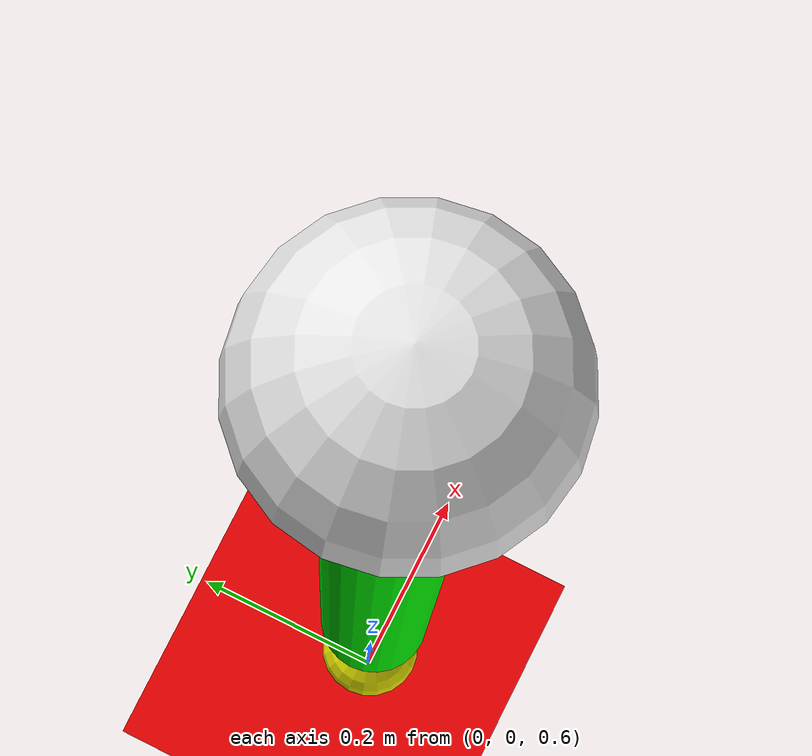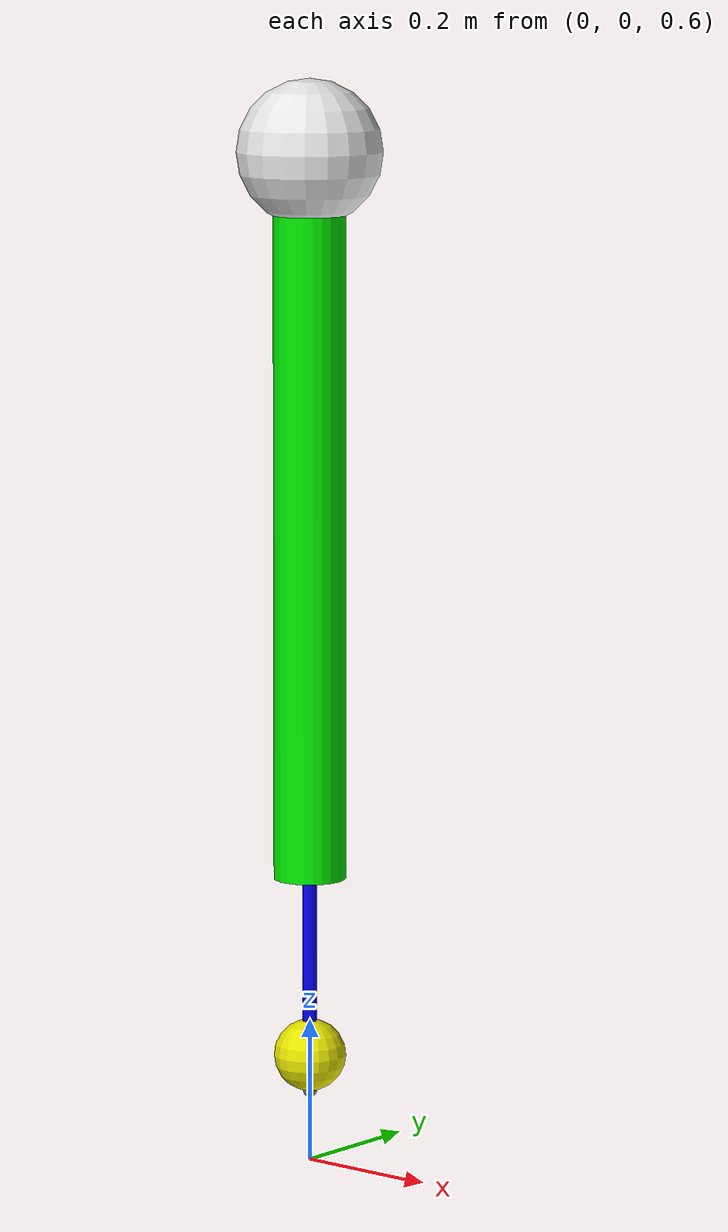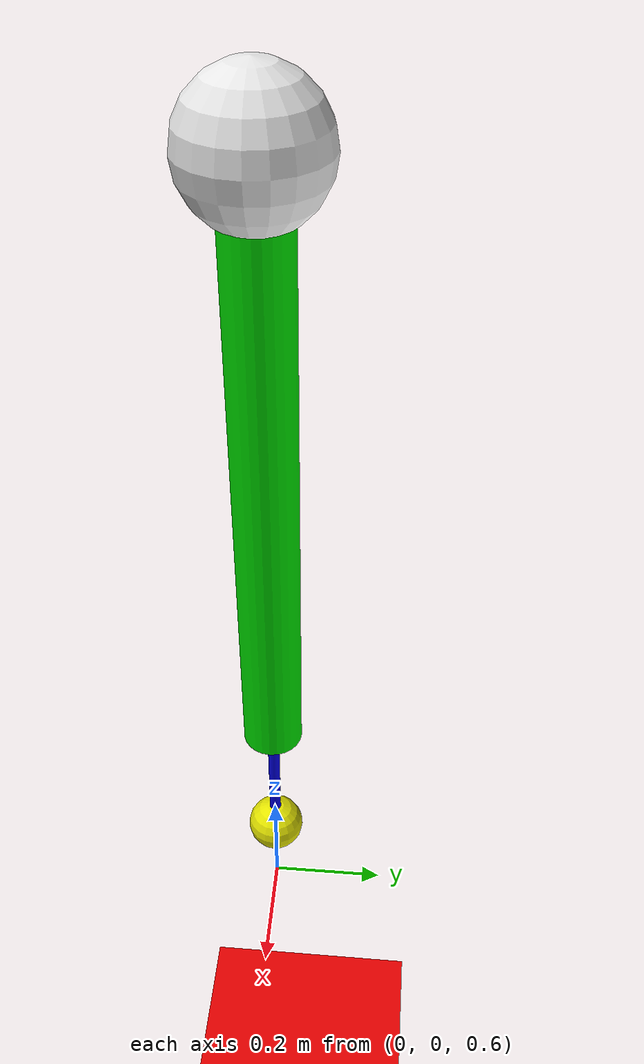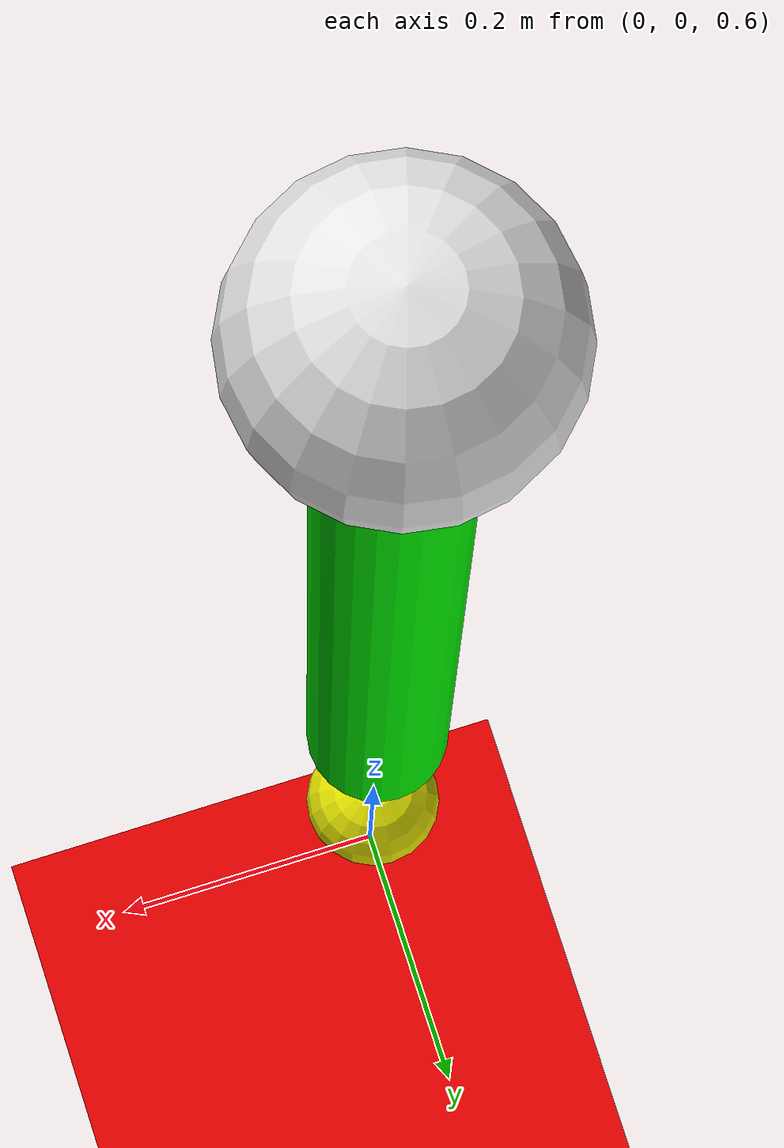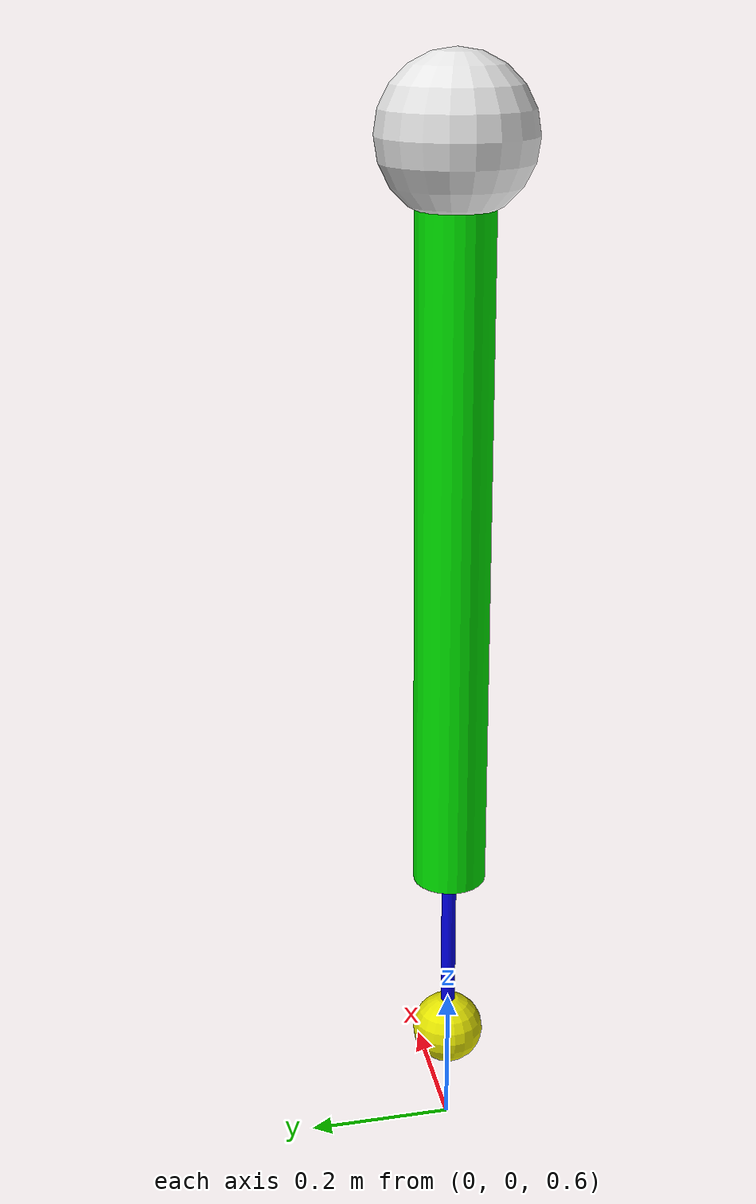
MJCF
<mujoco>

 <visual>
<headlight ambient="0.5 0.5 0.5"/>
 </visual>
	<option timestep="0.001" integrator="RK4" gravity="0 0 -9.81">
	</option>

	<worldbody>
		<geom type="plane" size="100 1 0.1" rgba=".9 0 0 1"/>
		<body name="torso" pos="0 0 2">
			<joint name="x" type="slide" pos="0 0 0" axis="1 0 0" />
			<joint name="z" type="slide" pos="0 0 0" axis="0 0 1" />
			<geom type="sphere" size="0.1" rgba=".9 .9 .9 1" mass="1"/>

			<body name="leg" pos="0 0 -0.5" euler="0 0 0">
				<geom type="cylinder" size=".05 .5" rgba="0 .9 0 1" mass="0"/>

				<body name="foot" pos="0 0 -0.75">
					<joint name="knee" type="slide" pos="0 0 0.25" axis="0 0 -1" />
					<geom type="cylinder" pos="0 0 0.125" size=".01 .125" rgba="0 0 .9 1" mass="0"/>
					<geom name="foot_sphere" type="sphere" size="0.05" rgba=".9 .9 0 1" mass="0.1"/>
					<site name="foot_site" pos="0 0 -0.05" size="0.01" />
				</body>

			</body>
		</body>
	</worldbody>

	<actuator>
		<motor name="motor-knee" joint="knee" gear="100"/>
	</actuator>

	<sensor>
		<!-- 접촉 여부 센서 (True/False) -->
		<touch name="foot_touch" site="foot_site"/>

		<!-- 3축 힘 센서 (force + torque) -->
		<force name="foot_force" site="foot_site"/>

	</sensor>

</mujoco>
